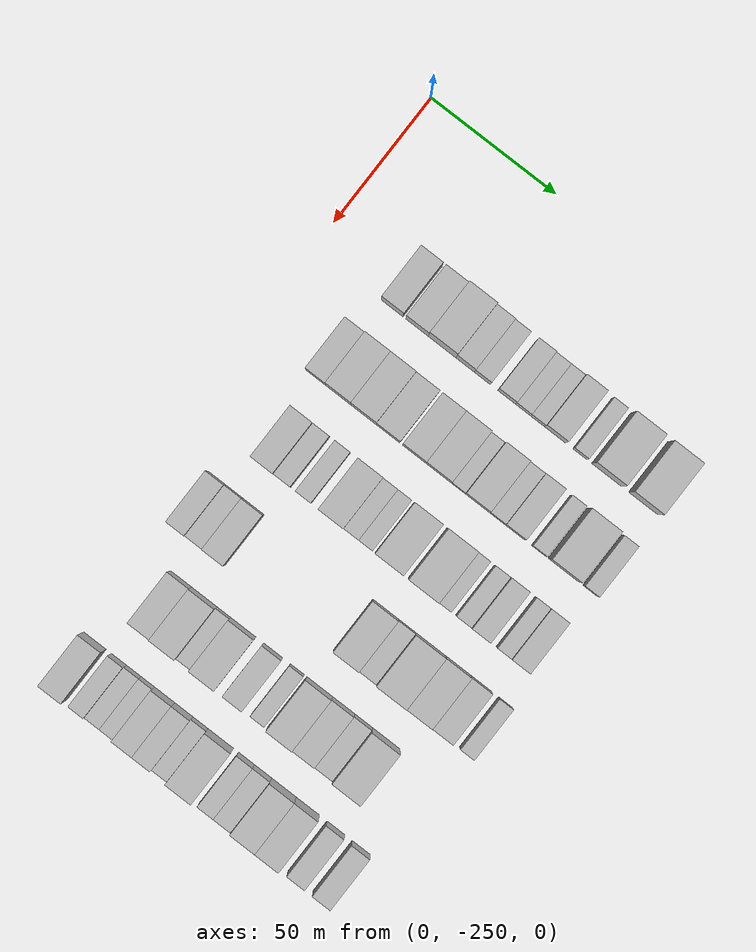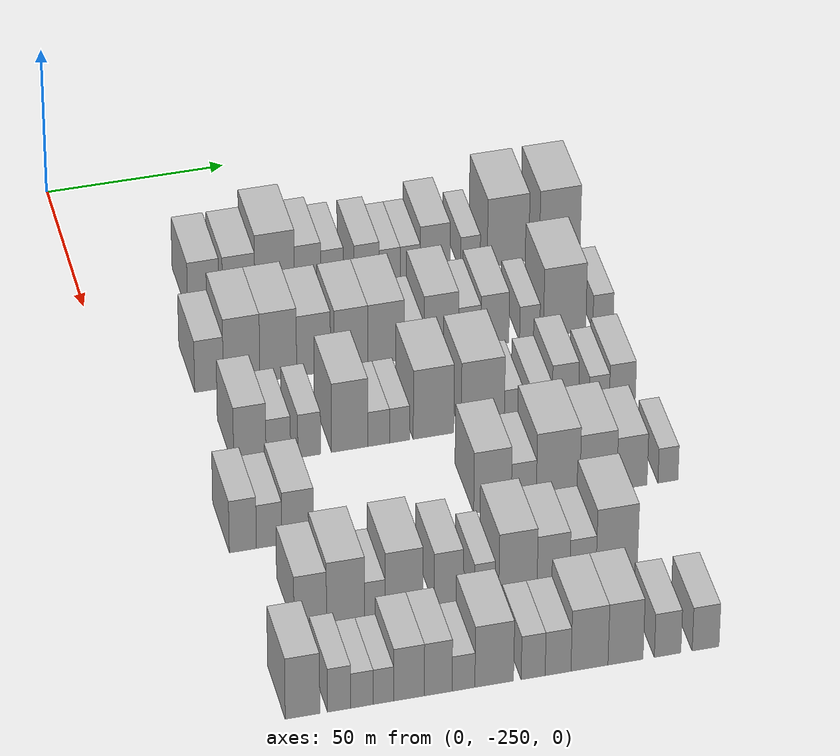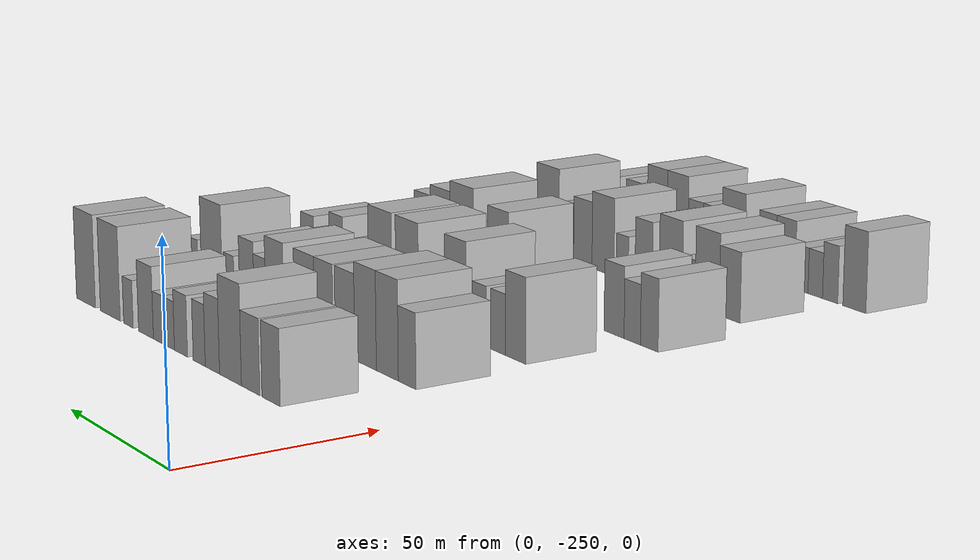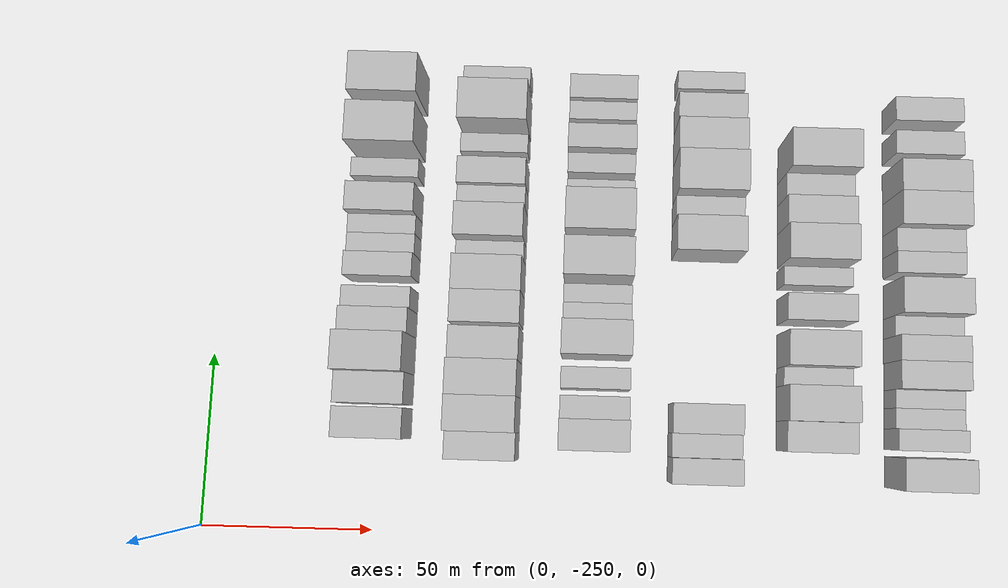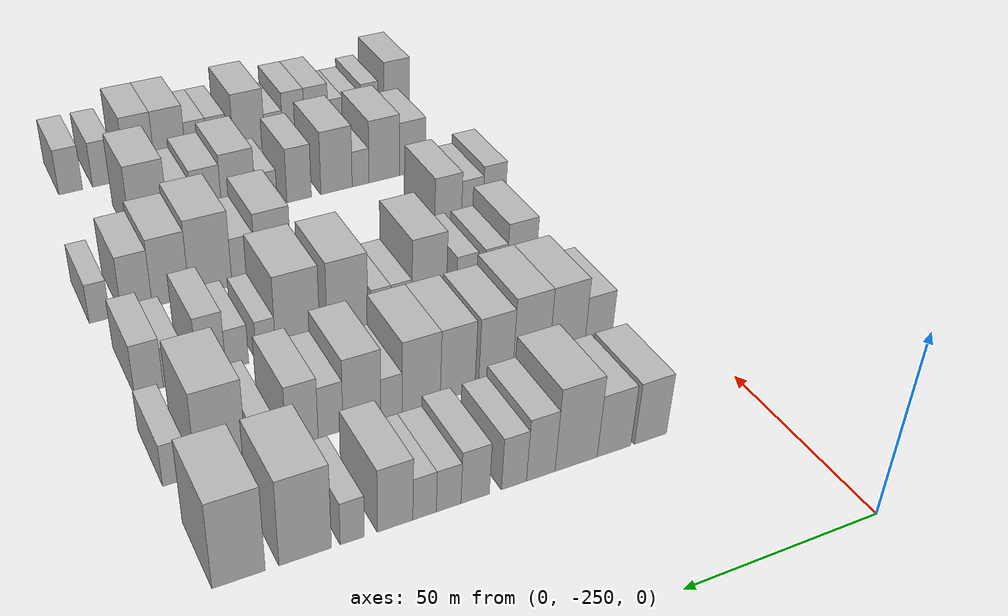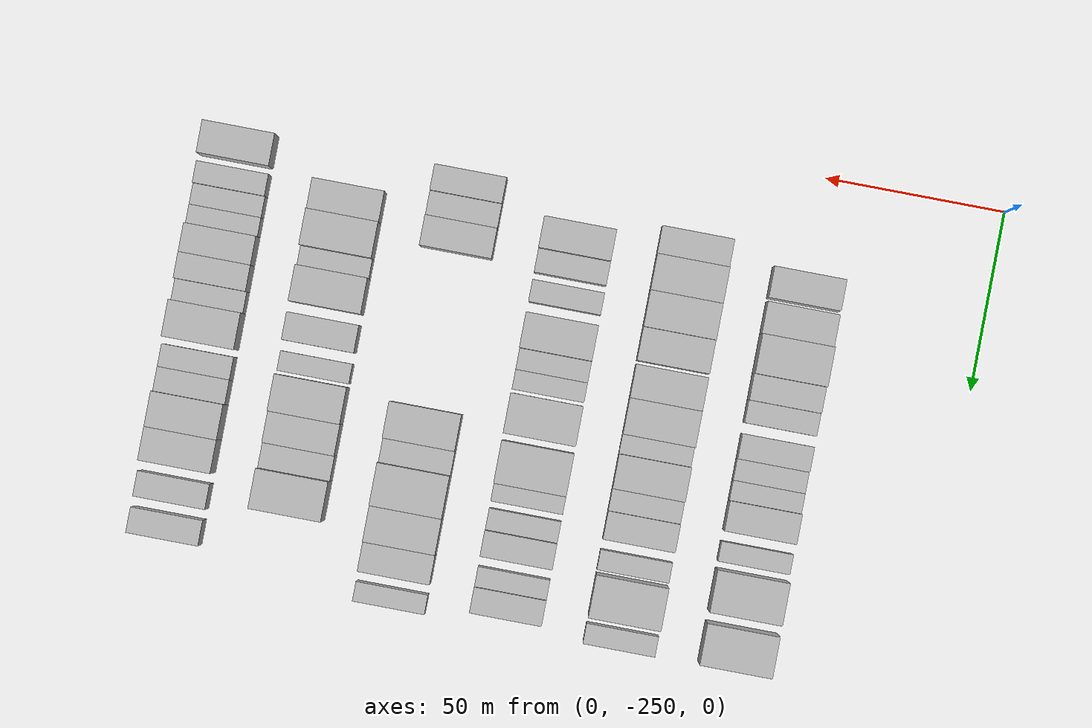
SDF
<sdf version="1.6">
 <world name="default">
  <model name="building_37">
   <static>1</static>
   <pose>50.0000 -218.8136 0 0.000000 0.000000 0.000000</pose>
   <link name="link">
    <pose>0 0 9.00 0 0 0</pose>
    <collision name="collision"><geometry><box><size>20.0000 8.7217 18.0000</size></box></geometry></collision>
    <visual name="visual">
     <cast_shadows>0</cast_shadows>
     <geometry><box><size>20.0000 8.7217 18.0000</size></box></geometry>
     <material>
      <script>
       <uri>model://HANNAS_wall/materials/scripts</uri>
       <uri>model://HANNAS_wall/materials/textures</uri>
       <name>vrc/HANNAS_wall</name>
      </script>
     </material>
    </visual>
   </link>
  </model>
  <model name="building_38">
   <static>1</static>
   <pose>50.0000 -208.9542 0 0.000000 0.000000 0.000000</pose>
   <link name="link">
    <pose>0 0 9.00 0 0 0</pose>
    <collision name="collision"><geometry><box><size>20.0000 8.9971 18.0000</size></box></geometry></collision>
    <visual name="visual">
     <cast_shadows>0</cast_shadows>
     <geometry><box><size>20.0000 8.9971 18.0000</size></box></geometry>
     <material>
      <script>
       <uri>model://HANNAS_wall/materials/scripts</uri>
       <uri>model://HANNAS_wall/materials/textures</uri>
       <name>vrc/HANNAS_wall</name>
      </script>
     </material>
    </visual>
   </link>
  </model>
  <model name="building_39">
   <static>1</static>
   <pose>50.0000 -198.9509 0 0.000000 0.000000 0.000000</pose>
   <link name="link">
    <pose>0 0 12.00 0 0 0</pose>
    <collision name="collision"><geometry><box><size>20.0000 11.0095 24.0000</size></box></geometry></collision>
    <visual name="visual">
     <cast_shadows>0</cast_shadows>
     <geometry><box><size>20.0000 11.0095 24.0000</size></box></geometry>
     <material>
      <script>
       <uri>model://HANNAS_wall/materials/scripts</uri>
       <uri>model://HANNAS_wall/materials/textures</uri>
       <name>vrc/HANNAS_wall</name>
      </script>
     </material>
    </visual>
   </link>
  </model>
  <model name="building_40">
   <static>1</static>
   <pose>50.0000 -189.7925 0 0.000000 0.000000 0.000000</pose>
   <link name="link">
    <pose>0 0 9.00 0 0 0</pose>
    <collision name="collision"><geometry><box><size>20.0000 7.3073 18.0000</size></box></geometry></collision>
    <visual name="visual">
     <cast_shadows>0</cast_shadows>
     <geometry><box><size>20.0000 7.3073 18.0000</size></box></geometry>
     <material>
      <script>
       <uri>model://HANNAS_wall/materials/scripts</uri>
       <uri>model://HANNAS_wall/materials/textures</uri>
       <name>vrc/HANNAS_wall</name>
      </script>
     </material>
    </visual>
   </link>
  </model>
  <model name="building_41">
   <static>1</static>
   <pose>50.0000 -182.9778 0 0.000000 0.000000 0.000000</pose>
   <link name="link">
    <pose>0 0 7.50 0 0 0</pose>
    <collision name="collision"><geometry><box><size>20.0000 6.3221 15.0000</size></box></geometry></collision>
    <visual name="visual">
     <cast_shadows>0</cast_shadows>
     <geometry><box><size>20.0000 6.3221 15.0000</size></box></geometry>
     <material>
      <script>
       <uri>model://HANNAS_wall/materials/scripts</uri>
       <uri>model://HANNAS_wall/materials/textures</uri>
       <name>vrc/HANNAS_wall</name>
      </script>
     </material>
    </visual>
   </link>
  </model>
  <model name="building_42">
   <static>1</static>
   <pose>50.0000 -173.3181 0 0.000000 0.000000 0.000000</pose>
   <link name="link">
    <pose>0 0 7.50 0 0 0</pose>
    <collision name="collision"><geometry><box><size>20.0000 6.9972 15.0000</size></box></geometry></collision>
    <visual name="visual">
     <cast_shadows>0</cast_shadows>
     <geometry><box><size>20.0000 6.9972 15.0000</size></box></geometry>
     <material>
      <script>
       <uri>model://HANNAS_wall/materials/scripts</uri>
       <uri>model://HANNAS_wall/materials/textures</uri>
       <name>vrc/HANNAS_wall</name>
      </script>
     </material>
    </visual>
   </link>
  </model>
  <model name="building_43">
   <static>1</static>
   <pose>50.0000 -166.8333 0 0.000000 0.000000 0.000000</pose>
   <link name="link">
    <pose>0 0 6.00 0 0 0</pose>
    <collision name="collision"><geometry><box><size>20.0000 5.9725 12.0000</size></box></geometry></collision>
    <visual name="visual">
     <cast_shadows>0</cast_shadows>
     <geometry><box><size>20.0000 5.9725 12.0000</size></box></geometry>
     <material>
      <script>
       <uri>model://HANNAS_wall/materials/scripts</uri>
       <uri>model://HANNAS_wall/materials/textures</uri>
       <name>vrc/HANNAS_wall</name>
      </script>
     </material>
    </visual>
   </link>
  </model>
  <model name="building_44">
   <static>1</static>
   <pose>50.0000 -161.0498 0 0.000000 0.000000 0.000000</pose>
   <link name="link">
    <pose>0 0 6.00 0 0 0</pose>
    <collision name="collision"><geometry><box><size>20.0000 5.5944 12.0000</size></box></geometry></collision>
    <visual name="visual">
     <cast_shadows>0</cast_shadows>
     <geometry><box><size>20.0000 5.5944 12.0000</size></box></geometry>
     <material>
      <script>
       <uri>model://HANNAS_wall/materials/scripts</uri>
       <uri>model://HANNAS_wall/materials/textures</uri>
       <name>vrc/HANNAS_wall</name>
      </script>
     </material>
    </visual>
   </link>
  </model>
  <model name="building_45">
   <static>1</static>
   <pose>50.0000 -154.0723 0 0.000000 0.000000 0.000000</pose>
   <link name="link">
    <pose>0 0 9.00 0 0 0</pose>
    <collision name="collision"><geometry><box><size>20.0000 8.3606 18.0000</size></box></geometry></collision>
    <visual name="visual">
     <cast_shadows>0</cast_shadows>
     <geometry><box><size>20.0000 8.3606 18.0000</size></box></geometry>
     <material>
      <script>
       <uri>model://HANNAS_wall/materials/scripts</uri>
       <uri>model://HANNAS_wall/materials/textures</uri>
       <name>vrc/HANNAS_wall</name>
      </script>
     </material>
    </visual>
   </link>
  </model>
  <model name="building_46">
   <static>1</static>
   <pose>50.0000 -144.1225 0 0.000000 0.000000 0.000000</pose>
   <link name="link">
    <pose>0 0 6.00 0 0 0</pose>
    <collision name="collision"><geometry><box><size>20.0000 5.5389 12.0000</size></box></geometry></collision>
    <visual name="visual">
     <cast_shadows>0</cast_shadows>
     <geometry><box><size>20.0000 5.5389 12.0000</size></box></geometry>
     <material>
      <script>
       <uri>model://HANNAS_wall/materials/scripts</uri>
       <uri>model://HANNAS_wall/materials/textures</uri>
       <name>vrc/HANNAS_wall</name>
      </script>
     </material>
    </visual>
   </link>
  </model>
  <model name="building_47">
   <static>1</static>
   <pose>50.0000 -133.4879 0 0.000000 0.000000 0.000000</pose>
   <link name="link">
    <pose>0 0 12.00 0 0 0</pose>
    <collision name="collision"><geometry><box><size>20.0000 11.7302 24.0000</size></box></geometry></collision>
    <visual name="visual">
     <cast_shadows>0</cast_shadows>
     <geometry><box><size>20.0000 11.7302 24.0000</size></box></geometry>
     <material>
      <script>
       <uri>model://HANNAS_wall/materials/scripts</uri>
       <uri>model://HANNAS_wall/materials/textures</uri>
       <name>vrc/HANNAS_wall</name>
      </script>
     </material>
    </visual>
   </link>
  </model>
  <model name="building_48">
   <static>1</static>
   <pose>50.0000 -118.8584 0 0.000000 0.000000 0.000000</pose>
   <link name="link">
    <pose>0 0 12.00 0 0 0</pose>
    <collision name="collision"><geometry><box><size>20.0000 11.5290 24.0000</size></box></geometry></collision>
    <visual name="visual">
     <cast_shadows>0</cast_shadows>
     <geometry><box><size>20.0000 11.5290 24.0000</size></box></geometry>
     <material>
      <script>
       <uri>model://HANNAS_wall/materials/scripts</uri>
       <uri>model://HANNAS_wall/materials/textures</uri>
       <name>vrc/HANNAS_wall</name>
      </script>
     </material>
    </visual>
   </link>
  </model>
  <model name="building_157">
   <static>1</static>
   <pose>82.0000 -224.3511 0 0.000000 0.000000 0.000000</pose>
   <link name="link">
    <pose>0 0 9.00 0 0 0</pose>
    <collision name="collision"><geometry><box><size>20.0000 7.8740 18.0000</size></box></geometry></collision>
    <visual name="visual">
     <cast_shadows>0</cast_shadows>
     <geometry><box><size>20.0000 7.8740 18.0000</size></box></geometry>
     <material>
      <script>
       <uri>model://HANNAS_wall/materials/scripts</uri>
       <uri>model://HANNAS_wall/materials/textures</uri>
       <name>vrc/HANNAS_wall</name>
      </script>
     </material>
    </visual>
   </link>
  </model>
  <model name="building_158">
   <static>1</static>
   <pose>82.0000 -215.4041 0 0.000000 0.000000 0.000000</pose>
   <link name="link">
    <pose>0 0 12.00 0 0 0</pose>
    <collision name="collision"><geometry><box><size>20.0000 10.0199 24.0000</size></box></geometry></collision>
    <visual name="visual">
     <cast_shadows>0</cast_shadows>
     <geometry><box><size>20.0000 10.0199 24.0000</size></box></geometry>
     <material>
      <script>
       <uri>model://HANNAS_wall/materials/scripts</uri>
       <uri>model://HANNAS_wall/materials/textures</uri>
       <name>vrc/HANNAS_wall</name>
      </script>
     </material>
    </visual>
   </link>
  </model>
  <model name="building_159">
   <static>1</static>
   <pose>82.0000 -205.3446 0 0.000000 0.000000 0.000000</pose>
   <link name="link">
    <pose>0 0 12.00 0 0 0</pose>
    <collision name="collision"><geometry><box><size>20.0000 10.0991 24.0000</size></box></geometry></collision>
    <visual name="visual">
     <cast_shadows>0</cast_shadows>
     <geometry><box><size>20.0000 10.0991 24.0000</size></box></geometry>
     <material>
      <script>
       <uri>model://HANNAS_wall/materials/scripts</uri>
       <uri>model://HANNAS_wall/materials/textures</uri>
       <name>vrc/HANNAS_wall</name>
      </script>
     </material>
    </visual>
   </link>
  </model>
  <model name="building_160">
   <static>1</static>
   <pose>82.0000 -195.6320 0 0.000000 0.000000 0.000000</pose>
   <link name="link">
    <pose>0 0 10.50 0 0 0</pose>
    <collision name="collision"><geometry><box><size>20.0000 9.3261 21.0000</size></box></geometry></collision>
    <visual name="visual">
     <cast_shadows>0</cast_shadows>
     <geometry><box><size>20.0000 9.3261 21.0000</size></box></geometry>
     <material>
      <script>
       <uri>model://HANNAS_wall/materials/scripts</uri>
       <uri>model://HANNAS_wall/materials/textures</uri>
       <name>vrc/HANNAS_wall</name>
      </script>
     </material>
    </visual>
   </link>
  </model>
  <model name="building_161">
   <static>1</static>
   <pose>82.0000 -185.3292 0 0.000000 0.000000 0.000000</pose>
   <link name="link">
    <pose>0 0 10.50 0 0 0</pose>
    <collision name="collision"><geometry><box><size>20.0000 9.2794 21.0000</size></box></geometry></collision>
    <visual name="visual">
     <cast_shadows>0</cast_shadows>
     <geometry><box><size>20.0000 9.2794 21.0000</size></box></geometry>
     <material>
      <script>
       <uri>model://HANNAS_wall/materials/scripts</uri>
       <uri>model://HANNAS_wall/materials/textures</uri>
       <name>vrc/HANNAS_wall</name>
      </script>
     </material>
    </visual>
   </link>
  </model>
  <model name="building_162">
   <static>1</static>
   <pose>82.0000 -175.6567 0 0.000000 0.000000 0.000000</pose>
   <link name="link">
    <pose>0 0 10.50 0 0 0</pose>
    <collision name="collision"><geometry><box><size>20.0000 10.0657 21.0000</size></box></geometry></collision>
    <visual name="visual">
     <cast_shadows>0</cast_shadows>
     <geometry><box><size>20.0000 10.0657 21.0000</size></box></geometry>
     <material>
      <script>
       <uri>model://HANNAS_wall/materials/scripts</uri>
       <uri>model://HANNAS_wall/materials/textures</uri>
       <name>vrc/HANNAS_wall</name>
      </script>
     </material>
    </visual>
   </link>
  </model>
  <model name="building_163">
   <static>1</static>
   <pose>82.0000 -167.8870 0 0.000000 0.000000 0.000000</pose>
   <link name="link">
    <pose>0 0 6.00 0 0 0</pose>
    <collision name="collision"><geometry><box><size>20.0000 5.4738 12.0000</size></box></geometry></collision>
    <visual name="visual">
     <cast_shadows>0</cast_shadows>
     <geometry><box><size>20.0000 5.4738 12.0000</size></box></geometry>
     <material>
      <script>
       <uri>model://HANNAS_wall/materials/scripts</uri>
       <uri>model://HANNAS_wall/materials/textures</uri>
       <name>vrc/HANNAS_wall</name>
      </script>
     </material>
    </visual>
   </link>
  </model>
  <model name="building_164">
   <static>1</static>
   <pose>82.0000 -160.3617 0 0.000000 0.000000 0.000000</pose>
   <link name="link">
    <pose>0 0 10.50 0 0 0</pose>
    <collision name="collision"><geometry><box><size>20.0000 9.5767 21.0000</size></box></geometry></collision>
    <visual name="visual">
     <cast_shadows>0</cast_shadows>
     <geometry><box><size>20.0000 9.5767 21.0000</size></box></geometry>
     <material>
      <script>
       <uri>model://HANNAS_wall/materials/scripts</uri>
       <uri>model://HANNAS_wall/materials/textures</uri>
       <name>vrc/HANNAS_wall</name>
      </script>
     </material>
    </visual>
   </link>
  </model>
  <model name="building_165">
   <static>1</static>
   <pose>82.0000 -152.4715 0 0.000000 0.000000 0.000000</pose>
   <link name="link">
    <pose>0 0 7.50 0 0 0</pose>
    <collision name="collision"><geometry><box><size>20.0000 6.2038 15.0000</size></box></geometry></collision>
    <visual name="visual">
     <cast_shadows>0</cast_shadows>
     <geometry><box><size>20.0000 6.2038 15.0000</size></box></geometry>
     <material>
      <script>
       <uri>model://HANNAS_wall/materials/scripts</uri>
       <uri>model://HANNAS_wall/materials/textures</uri>
       <name>vrc/HANNAS_wall</name>
      </script>
     </material>
    </visual>
   </link>
  </model>
  <model name="building_166">
   <static>1</static>
   <pose>82.0000 -145.4424 0 0.000000 0.000000 0.000000</pose>
   <link name="link">
    <pose>0 0 9.00 0 0 0</pose>
    <collision name="collision"><geometry><box><size>20.0000 7.8543 18.0000</size></box></geometry></collision>
    <visual name="visual">
     <cast_shadows>0</cast_shadows>
     <geometry><box><size>20.0000 7.8543 18.0000</size></box></geometry>
     <material>
      <script>
       <uri>model://HANNAS_wall/materials/scripts</uri>
       <uri>model://HANNAS_wall/materials/textures</uri>
       <name>vrc/HANNAS_wall</name>
      </script>
     </material>
    </visual>
   </link>
  </model>
  <model name="building_167">
   <static>1</static>
   <pose>82.0000 -135.7061 0 0.000000 0.000000 0.000000</pose>
   <link name="link">
    <pose>0 0 6.00 0 0 0</pose>
    <collision name="collision"><geometry><box><size>20.0000 5.6183 12.0000</size></box></geometry></collision>
    <visual name="visual">
     <cast_shadows>0</cast_shadows>
     <geometry><box><size>20.0000 5.6183 12.0000</size></box></geometry>
     <material>
      <script>
       <uri>model://HANNAS_wall/materials/scripts</uri>
       <uri>model://HANNAS_wall/materials/textures</uri>
       <name>vrc/HANNAS_wall</name>
      </script>
     </material>
    </visual>
   </link>
  </model>
  <model name="building_168">
   <static>1</static>
   <pose>82.0000 -125.9696 0 0.000000 0.000000 0.000000</pose>
   <link name="link">
    <pose>0 0 12.00 0 0 0</pose>
    <collision name="collision"><geometry><box><size>20.0000 11.8546 24.0000</size></box></geometry></collision>
    <visual name="visual">
     <cast_shadows>0</cast_shadows>
     <geometry><box><size>20.0000 11.8546 24.0000</size></box></geometry>
     <material>
      <script>
       <uri>model://HANNAS_wall/materials/scripts</uri>
       <uri>model://HANNAS_wall/materials/textures</uri>
       <name>vrc/HANNAS_wall</name>
      </script>
     </material>
    </visual>
   </link>
  </model>
  <model name="building_169">
   <static>1</static>
   <pose>82.0000 -115.1992 0 0.000000 0.000000 0.000000</pose>
   <link name="link">
    <pose>0 0 6.00 0 0 0</pose>
    <collision name="collision"><geometry><box><size>20.0000 5.6862 12.0000</size></box></geometry></collision>
    <visual name="visual">
     <cast_shadows>0</cast_shadows>
     <geometry><box><size>20.0000 5.6862 12.0000</size></box></geometry>
     <material>
      <script>
       <uri>model://HANNAS_wall/materials/scripts</uri>
       <uri>model://HANNAS_wall/materials/textures</uri>
       <name>vrc/HANNAS_wall</name>
      </script>
     </material>
    </visual>
   </link>
  </model>
  <model name="building_281">
   <static>1</static>
   <pose>114.0000 -220.4033 0 0.000000 0.000000 0.000000</pose>
   <link name="link">
    <pose>0 0 10.50 0 0 0</pose>
    <collision name="collision"><geometry><box><size>20.0000 8.7437 21.0000</size></box></geometry></collision>
    <visual name="visual">
     <cast_shadows>0</cast_shadows>
     <geometry><box><size>20.0000 8.7437 21.0000</size></box></geometry>
     <material>
      <script>
       <uri>model://HANNAS_wall/materials/scripts</uri>
       <uri>model://HANNAS_wall/materials/textures</uri>
       <name>vrc/HANNAS_wall</name>
      </script>
     </material>
    </visual>
   </link>
  </model>
  <model name="building_282">
   <static>1</static>
   <pose>114.0000 -212.7180 0 0.000000 0.000000 0.000000</pose>
   <link name="link">
    <pose>0 0 7.50 0 0 0</pose>
    <collision name="collision"><geometry><box><size>20.0000 6.6269 15.0000</size></box></geometry></collision>
    <visual name="visual">
     <cast_shadows>0</cast_shadows>
     <geometry><box><size>20.0000 6.6269 15.0000</size></box></geometry>
     <material>
      <script>
       <uri>model://HANNAS_wall/materials/scripts</uri>
       <uri>model://HANNAS_wall/materials/textures</uri>
       <name>vrc/HANNAS_wall</name>
      </script>
     </material>
    </visual>
   </link>
  </model>
  <model name="building_283">
   <static>1</static>
   <pose>114.0000 -204.3263 0 0.000000 0.000000 0.000000</pose>
   <link name="link">
    <pose>0 0 7.50 0 0 0</pose>
    <collision name="collision"><geometry><box><size>20.0000 6.1565 15.0000</size></box></geometry></collision>
    <visual name="visual">
     <cast_shadows>0</cast_shadows>
     <geometry><box><size>20.0000 6.1565 15.0000</size></box></geometry>
     <material>
      <script>
       <uri>model://HANNAS_wall/materials/scripts</uri>
       <uri>model://HANNAS_wall/materials/textures</uri>
       <name>vrc/HANNAS_wall</name>
      </script>
     </material>
    </visual>
   </link>
  </model>
  <model name="building_284">
   <static>1</static>
   <pose>114.0000 -193.3181 0 0.000000 0.000000 0.000000</pose>
   <link name="link">
    <pose>0 0 12.00 0 0 0</pose>
    <collision name="collision"><geometry><box><size>20.0000 9.8600 24.0000</size></box></geometry></collision>
    <visual name="visual">
     <cast_shadows>0</cast_shadows>
     <geometry><box><size>20.0000 9.8600 24.0000</size></box></geometry>
     <material>
      <script>
       <uri>model://HANNAS_wall/materials/scripts</uri>
       <uri>model://HANNAS_wall/materials/textures</uri>
       <name>vrc/HANNAS_wall</name>
      </script>
     </material>
    </visual>
   </link>
  </model>
  <model name="building_285">
   <static>1</static>
   <pose>114.0000 -185.4224 0 0.000000 0.000000 0.000000</pose>
   <link name="link">
    <pose>0 0 6.00 0 0 0</pose>
    <collision name="collision"><geometry><box><size>20.0000 5.9312 12.0000</size></box></geometry></collision>
    <visual name="visual">
     <cast_shadows>0</cast_shadows>
     <geometry><box><size>20.0000 5.9312 12.0000</size></box></geometry>
     <material>
      <script>
       <uri>model://HANNAS_wall/materials/scripts</uri>
       <uri>model://HANNAS_wall/materials/textures</uri>
       <name>vrc/HANNAS_wall</name>
      </script>
     </material>
    </visual>
   </link>
  </model>
  <model name="building_286">
   <static>1</static>
   <pose>114.0000 -179.7169 0 0.000000 0.000000 0.000000</pose>
   <link name="link">
    <pose>0 0 6.00 0 0 0</pose>
    <collision name="collision"><geometry><box><size>20.0000 5.4798 12.0000</size></box></geometry></collision>
    <visual name="visual">
     <cast_shadows>0</cast_shadows>
     <geometry><box><size>20.0000 5.4798 12.0000</size></box></geometry>
     <material>
      <script>
       <uri>model://HANNAS_wall/materials/scripts</uri>
       <uri>model://HANNAS_wall/materials/textures</uri>
       <name>vrc/HANNAS_wall</name>
      </script>
     </material>
    </visual>
   </link>
  </model>
  <model name="building_287">
   <static>1</static>
   <pose>114.0000 -170.4242 0 0.000000 0.000000 0.000000</pose>
   <link name="link">
    <pose>0 0 12.00 0 0 0</pose>
    <collision name="collision"><geometry><box><size>20.0000 11.1057 24.0000</size></box></geometry></collision>
    <visual name="visual">
     <cast_shadows>0</cast_shadows>
     <geometry><box><size>20.0000 11.1057 24.0000</size></box></geometry>
     <material>
      <script>
       <uri>model://HANNAS_wall/materials/scripts</uri>
       <uri>model://HANNAS_wall/materials/textures</uri>
       <name>vrc/HANNAS_wall</name>
      </script>
     </material>
    </visual>
   </link>
  </model>
  <model name="building_288">
   <static>1</static>
   <pose>114.0000 -156.9574 0 0.000000 0.000000 0.000000</pose>
   <link name="link">
    <pose>0 0 12.00 0 0 0</pose>
    <collision name="collision"><geometry><box><size>20.0000 11.8280 24.0000</size></box></geometry></collision>
    <visual name="visual">
     <cast_shadows>0</cast_shadows>
     <geometry><box><size>20.0000 11.8280 24.0000</size></box></geometry>
     <material>
      <script>
       <uri>model://HANNAS_wall/materials/scripts</uri>
       <uri>model://HANNAS_wall/materials/textures</uri>
       <name>vrc/HANNAS_wall</name>
      </script>
     </material>
    </visual>
   </link>
  </model>
  <model name="building_289">
   <static>1</static>
   <pose>114.0000 -148.4713 0 0.000000 0.000000 0.000000</pose>
   <link name="link">
    <pose>0 0 6.00 0 0 0</pose>
    <collision name="collision"><geometry><box><size>20.0000 5.1443 12.0000</size></box></geometry></collision>
    <visual name="visual">
     <cast_shadows>0</cast_shadows>
     <geometry><box><size>20.0000 5.1443 12.0000</size></box></geometry>
     <material>
      <script>
       <uri>model://HANNAS_wall/materials/scripts</uri>
       <uri>model://HANNAS_wall/materials/textures</uri>
       <name>vrc/HANNAS_wall</name>
      </script>
     </material>
    </visual>
   </link>
  </model>
  <model name="building_290">
   <static>1</static>
   <pose>114.0000 -140.9201 0 0.000000 0.000000 0.000000</pose>
   <link name="link">
    <pose>0 0 6.00 0 0 0</pose>
    <collision name="collision"><geometry><box><size>20.0000 5.9581 12.0000</size></box></geometry></collision>
    <visual name="visual">
     <cast_shadows>0</cast_shadows>
     <geometry><box><size>20.0000 5.9581 12.0000</size></box></geometry>
     <material>
      <script>
       <uri>model://HANNAS_wall/materials/scripts</uri>
       <uri>model://HANNAS_wall/materials/textures</uri>
       <name>vrc/HANNAS_wall</name>
      </script>
     </material>
    </visual>
   </link>
  </model>
  <model name="building_291">
   <static>1</static>
   <pose>114.0000 -134.3191 0 0.000000 0.000000 0.000000</pose>
   <link name="link">
    <pose>0 0 9.00 0 0 0</pose>
    <collision name="collision"><geometry><box><size>20.0000 7.2440 18.0000</size></box></geometry></collision>
    <visual name="visual">
     <cast_shadows>0</cast_shadows>
     <geometry><box><size>20.0000 7.2440 18.0000</size></box></geometry>
     <material>
      <script>
       <uri>model://HANNAS_wall/materials/scripts</uri>
       <uri>model://HANNAS_wall/materials/textures</uri>
       <name>vrc/HANNAS_wall</name>
      </script>
     </material>
    </visual>
   </link>
  </model>
  <model name="building_292">
   <static>1</static>
   <pose>114.0000 -124.9095 0 0.000000 0.000000 0.000000</pose>
   <link name="link">
    <pose>0 0 6.00 0 0 0</pose>
    <collision name="collision"><geometry><box><size>20.0000 5.5752 12.0000</size></box></geometry></collision>
    <visual name="visual">
     <cast_shadows>0</cast_shadows>
     <geometry><box><size>20.0000 5.5752 12.0000</size></box></geometry>
     <material>
      <script>
       <uri>model://HANNAS_wall/materials/scripts</uri>
       <uri>model://HANNAS_wall/materials/textures</uri>
       <name>vrc/HANNAS_wall</name>
      </script>
     </material>
    </visual>
   </link>
  </model>
  <model name="building_293">
   <static>1</static>
   <pose>114.0000 -118.5237 0 0.000000 0.000000 0.000000</pose>
   <link name="link">
    <pose>0 0 7.50 0 0 0</pose>
    <collision name="collision"><geometry><box><size>20.0000 7.1963 15.0000</size></box></geometry></collision>
    <visual name="visual">
     <cast_shadows>0</cast_shadows>
     <geometry><box><size>20.0000 7.1963 15.0000</size></box></geometry>
     <material>
      <script>
       <uri>model://HANNAS_wall/materials/scripts</uri>
       <uri>model://HANNAS_wall/materials/textures</uri>
       <name>vrc/HANNAS_wall</name>
      </script>
     </material>
    </visual>
   </link>
  </model>
  <model name="building_401">
   <static>1</static>
   <pose>146.0000 -229.5546 0 0.000000 0.000000 0.000000</pose>
   <link name="link">
    <pose>0 0 9.00 0 0 0</pose>
    <collision name="collision"><geometry><box><size>20.0000 7.2374 18.0000</size></box></geometry></collision>
    <visual name="visual">
     <cast_shadows>0</cast_shadows>
     <geometry><box><size>20.0000 7.2374 18.0000</size></box></geometry>
     <material>
      <script>
       <uri>model://HANNAS_wall/materials/scripts</uri>
       <uri>model://HANNAS_wall/materials/textures</uri>
       <name>vrc/HANNAS_wall</name>
      </script>
     </material>
    </visual>
   </link>
  </model>
  <model name="building_402">
   <static>1</static>
   <pose>146.0000 -222.5397 0 0.000000 0.000000 0.000000</pose>
   <link name="link">
    <pose>0 0 7.50 0 0 0</pose>
    <collision name="collision"><geometry><box><size>20.0000 6.7925 15.0000</size></box></geometry></collision>
    <visual name="visual">
     <cast_shadows>0</cast_shadows>
     <geometry><box><size>20.0000 6.7925 15.0000</size></box></geometry>
     <material>
      <script>
       <uri>model://HANNAS_wall/materials/scripts</uri>
       <uri>model://HANNAS_wall/materials/textures</uri>
       <name>vrc/HANNAS_wall</name>
      </script>
     </material>
    </visual>
   </link>
  </model>
  <model name="building_403">
   <static>1</static>
   <pose>146.0000 -214.9189 0 0.000000 0.000000 0.000000</pose>
   <link name="link">
    <pose>0 0 9.00 0 0 0</pose>
    <collision name="collision"><geometry><box><size>20.0000 8.4490 18.0000</size></box></geometry></collision>
    <visual name="visual">
     <cast_shadows>0</cast_shadows>
     <geometry><box><size>20.0000 8.4490 18.0000</size></box></geometry>
     <material>
      <script>
       <uri>model://HANNAS_wall/materials/scripts</uri>
       <uri>model://HANNAS_wall/materials/textures</uri>
       <name>vrc/HANNAS_wall</name>
      </script>
     </material>
    </visual>
   </link>
  </model>
  <model name="building_404">
   <static>1</static>
   <pose>146.0000 -162.4751 0 0.000000 0.000000 0.000000</pose>
   <link name="link">
    <pose>0 0 10.50 0 0 0</pose>
    <collision name="collision"><geometry><box><size>20.0000 10.1461 21.0000</size></box></geometry></collision>
    <visual name="visual">
     <cast_shadows>0</cast_shadows>
     <geometry><box><size>20.0000 10.1461 21.0000</size></box></geometry>
     <material>
      <script>
       <uri>model://HANNAS_wall/materials/scripts</uri>
       <uri>model://HANNAS_wall/materials/textures</uri>
       <name>vrc/HANNAS_wall</name>
      </script>
     </material>
    </visual>
   </link>
  </model>
  <model name="building_405">
   <static>1</static>
   <pose>146.0000 -154.0193 0 0.000000 0.000000 0.000000</pose>
   <link name="link">
    <pose>0 0 7.50 0 0 0</pose>
    <collision name="collision"><geometry><box><size>20.0000 6.7656 15.0000</size></box></geometry></collision>
    <visual name="visual">
     <cast_shadows>0</cast_shadows>
     <geometry><box><size>20.0000 6.7656 15.0000</size></box></geometry>
     <material>
      <script>
       <uri>model://HANNAS_wall/materials/scripts</uri>
       <uri>model://HANNAS_wall/materials/textures</uri>
       <name>vrc/HANNAS_wall</name>
      </script>
     </material>
    </visual>
   </link>
  </model>
  <model name="building_406">
   <static>1</static>
   <pose>146.0000 -144.7193 0 0.000000 0.000000 0.000000</pose>
   <link name="link">
    <pose>0 0 12.00 0 0 0</pose>
    <collision name="collision"><geometry><box><size>20.0000 11.8344 24.0000</size></box></geometry></collision>
    <visual name="visual">
     <cast_shadows>0</cast_shadows>
     <geometry><box><size>20.0000 11.8344 24.0000</size></box></geometry>
     <material>
      <script>
       <uri>model://HANNAS_wall/materials/scripts</uri>
       <uri>model://HANNAS_wall/materials/textures</uri>
       <name>vrc/HANNAS_wall</name>
      </script>
     </material>
    </visual>
   </link>
  </model>
  <model name="building_407">
   <static>1</static>
   <pose>146.0000 -133.7647 0 0.000000 0.000000 0.000000</pose>
   <link name="link">
    <pose>0 0 10.50 0 0 0</pose>
    <collision name="collision"><geometry><box><size>20.0000 10.0747 21.0000</size></box></geometry></collision>
    <visual name="visual">
     <cast_shadows>0</cast_shadows>
     <geometry><box><size>20.0000 10.0747 21.0000</size></box></geometry>
     <material>
      <script>
       <uri>model://HANNAS_wall/materials/scripts</uri>
       <uri>model://HANNAS_wall/materials/textures</uri>
       <name>vrc/HANNAS_wall</name>
      </script>
     </material>
    </visual>
   </link>
  </model>
  <model name="building_408">
   <static>1</static>
   <pose>146.0000 -124.5983 0 0.000000 0.000000 0.000000</pose>
   <link name="link">
    <pose>0 0 9.00 0 0 0</pose>
    <collision name="collision"><geometry><box><size>20.0000 8.2581 18.0000</size></box></geometry></collision>
    <visual name="visual">
     <cast_shadows>0</cast_shadows>
     <geometry><box><size>20.0000 8.2581 18.0000</size></box></geometry>
     <material>
      <script>
       <uri>model://HANNAS_wall/materials/scripts</uri>
       <uri>model://HANNAS_wall/materials/textures</uri>
       <name>vrc/HANNAS_wall</name>
      </script>
     </material>
    </visual>
   </link>
  </model>
  <model name="building_409">
   <static>1</static>
   <pose>146.0000 -114.7355 0 0.000000 0.000000 0.000000</pose>
   <link name="link">
    <pose>0 0 6.00 0 0 0</pose>
    <collision name="collision"><geometry><box><size>20.0000 5.4674 12.0000</size></box></geometry></collision>
    <visual name="visual">
     <cast_shadows>0</cast_shadows>
     <geometry><box><size>20.0000 5.4674 12.0000</size></box></geometry>
     <material>
      <script>
       <uri>model://HANNAS_wall/materials/scripts</uri>
       <uri>model://HANNAS_wall/materials/textures</uri>
       <name>vrc/HANNAS_wall</name>
      </script>
     </material>
    </visual>
   </link>
  </model>
  <model name="building_519">
   <static>1</static>
   <pose>178.0000 -219.0295 0 0.000000 0.000000 0.000000</pose>
   <link name="link">
    <pose>0 0 9.00 0 0 0</pose>
    <collision name="collision"><geometry><box><size>20.0000 8.5733 18.0000</size></box></geometry></collision>
    <visual name="visual">
     <cast_shadows>0</cast_shadows>
     <geometry><box><size>20.0000 8.5733 18.0000</size></box></geometry>
     <material>
      <script>
       <uri>model://HANNAS_wall/materials/scripts</uri>
       <uri>model://HANNAS_wall/materials/textures</uri>
       <name>vrc/HANNAS_wall</name>
      </script>
     </material>
    </visual>
   </link>
  </model>
  <model name="building_520">
   <static>1</static>
   <pose>178.0000 -209.7074 0 0.000000 0.000000 0.000000</pose>
   <link name="link">
    <pose>0 0 10.50 0 0 0</pose>
    <collision name="collision"><geometry><box><size>20.0000 10.0709 21.0000</size></box></geometry></collision>
    <visual name="visual">
     <cast_shadows>0</cast_shadows>
     <geometry><box><size>20.0000 10.0709 21.0000</size></box></geometry>
     <material>
      <script>
       <uri>model://HANNAS_wall/materials/scripts</uri>
       <uri>model://HANNAS_wall/materials/textures</uri>
       <name>vrc/HANNAS_wall</name>
      </script>
     </material>
    </visual>
   </link>
  </model>
  <model name="building_521">
   <static>1</static>
   <pose>178.0000 -201.9458 0 0.000000 0.000000 0.000000</pose>
   <link name="link">
    <pose>0 0 6.00 0 0 0</pose>
    <collision name="collision"><geometry><box><size>20.0000 5.4523 12.0000</size></box></geometry></collision>
    <visual name="visual">
     <cast_shadows>0</cast_shadows>
     <geometry><box><size>20.0000 5.4523 12.0000</size></box></geometry>
     <material>
      <script>
       <uri>model://HANNAS_wall/materials/scripts</uri>
       <uri>model://HANNAS_wall/materials/textures</uri>
       <name>vrc/HANNAS_wall</name>
      </script>
     </material>
    </visual>
   </link>
  </model>
  <model name="building_522">
   <static>1</static>
   <pose>178.0000 -194.2092 0 0.000000 0.000000 0.000000</pose>
   <link name="link">
    <pose>0 0 10.50 0 0 0</pose>
    <collision name="collision"><geometry><box><size>20.0000 10.0209 21.0000</size></box></geometry></collision>
    <visual name="visual">
     <cast_shadows>0</cast_shadows>
     <geometry><box><size>20.0000 10.0209 21.0000</size></box></geometry>
     <material>
      <script>
       <uri>model://HANNAS_wall/materials/scripts</uri>
       <uri>model://HANNAS_wall/materials/textures</uri>
       <name>vrc/HANNAS_wall</name>
      </script>
     </material>
    </visual>
   </link>
  </model>
  <model name="building_523">
   <static>1</static>
   <pose>178.0000 -182.3529 0 0.000000 0.000000 0.000000</pose>
   <link name="link">
    <pose>0 0 9.00 0 0 0</pose>
    <collision name="collision"><geometry><box><size>20.0000 7.6916 18.0000</size></box></geometry></collision>
    <visual name="visual">
     <cast_shadows>0</cast_shadows>
     <geometry><box><size>20.0000 7.6916 18.0000</size></box></geometry>
     <material>
      <script>
       <uri>model://HANNAS_wall/materials/scripts</uri>
       <uri>model://HANNAS_wall/materials/textures</uri>
       <name>vrc/HANNAS_wall</name>
      </script>
     </material>
    </visual>
   </link>
  </model>
  <model name="building_524">
   <static>1</static>
   <pose>178.0000 -172.7483 0 0.000000 0.000000 0.000000</pose>
   <link name="link">
    <pose>0 0 6.00 0 0 0</pose>
    <collision name="collision"><geometry><box><size>20.0000 5.5178 12.0000</size></box></geometry></collision>
    <visual name="visual">
     <cast_shadows>0</cast_shadows>
     <geometry><box><size>20.0000 5.5178 12.0000</size></box></geometry>
     <material>
      <script>
       <uri>model://HANNAS_wall/materials/scripts</uri>
       <uri>model://HANNAS_wall/materials/textures</uri>
       <name>vrc/HANNAS_wall</name>
      </script>
     </material>
    </visual>
   </link>
  </model>
  <model name="building_525">
   <static>1</static>
   <pose>178.0000 -163.8823 0 0.000000 0.000000 0.000000</pose>
   <link name="link">
    <pose>0 0 10.50 0 0 0</pose>
    <collision name="collision"><geometry><box><size>20.0000 10.2141 21.0000</size></box></geometry></collision>
    <visual name="visual">
     <cast_shadows>0</cast_shadows>
     <geometry><box><size>20.0000 10.2141 21.0000</size></box></geometry>
     <material>
      <script>
       <uri>model://HANNAS_wall/materials/scripts</uri>
       <uri>model://HANNAS_wall/materials/textures</uri>
       <name>vrc/HANNAS_wall</name>
      </script>
     </material>
    </visual>
   </link>
  </model>
  <model name="building_526">
   <static>1</static>
   <pose>178.0000 -154.3994 0 0.000000 0.000000 0.000000</pose>
   <link name="link">
    <pose>0 0 9.00 0 0 0</pose>
    <collision name="collision"><geometry><box><size>20.0000 8.7518 18.0000</size></box></geometry></collision>
    <visual name="visual">
     <cast_shadows>0</cast_shadows>
     <geometry><box><size>20.0000 8.7518 18.0000</size></box></geometry>
     <material>
      <script>
       <uri>model://HANNAS_wall/materials/scripts</uri>
       <uri>model://HANNAS_wall/materials/textures</uri>
       <name>vrc/HANNAS_wall</name>
      </script>
     </material>
    </visual>
   </link>
  </model>
  <model name="building_527">
   <static>1</static>
   <pose>178.0000 -146.5101 0 0.000000 0.000000 0.000000</pose>
   <link name="link">
    <pose>0 0 7.50 0 0 0</pose>
    <collision name="collision"><geometry><box><size>20.0000 7.0267 15.0000</size></box></geometry></collision>
    <visual name="visual">
     <cast_shadows>0</cast_shadows>
     <geometry><box><size>20.0000 7.0267 15.0000</size></box></geometry>
     <material>
      <script>
       <uri>model://HANNAS_wall/materials/scripts</uri>
       <uri>model://HANNAS_wall/materials/textures</uri>
       <name>vrc/HANNAS_wall</name>
      </script>
     </material>
    </visual>
   </link>
  </model>
  <model name="building_528">
   <static>1</static>
   <pose>178.0000 -137.4530 0 0.000000 0.000000 0.000000</pose>
   <link name="link">
    <pose>0 0 12.00 0 0 0</pose>
    <collision name="collision"><geometry><box><size>20.0000 11.0876 24.0000</size></box></geometry></collision>
    <visual name="visual">
     <cast_shadows>0</cast_shadows>
     <geometry><box><size>20.0000 11.0876 24.0000</size></box></geometry>
     <material>
      <script>
       <uri>model://HANNAS_wall/materials/scripts</uri>
       <uri>model://HANNAS_wall/materials/textures</uri>
       <name>vrc/HANNAS_wall</name>
      </script>
     </material>
    </visual>
   </link>
  </model>
  <model name="building_632">
   <static>1</static>
   <pose>210.0000 -228.5400 0 0.000000 0.000000 0.000000</pose>
   <link name="link">
    <pose>0 0 10.50 0 0 0</pose>
    <collision name="collision"><geometry><box><size>20.0000 8.9979 21.0000</size></box></geometry></collision>
    <visual name="visual">
     <cast_shadows>0</cast_shadows>
     <geometry><box><size>20.0000 8.9979 21.0000</size></box></geometry>
     <material>
      <script>
       <uri>model://HANNAS_wall/materials/scripts</uri>
       <uri>model://HANNAS_wall/materials/textures</uri>
       <name>vrc/HANNAS_wall</name>
      </script>
     </material>
    </visual>
   </link>
  </model>
  <model name="building_633">
   <static>1</static>
   <pose>210.0000 -219.0046 0 0.000000 0.000000 0.000000</pose>
   <link name="link">
    <pose>0 0 7.50 0 0 0</pose>
    <collision name="collision"><geometry><box><size>20.0000 6.0728 15.0000</size></box></geometry></collision>
    <visual name="visual">
     <cast_shadows>0</cast_shadows>
     <geometry><box><size>20.0000 6.0728 15.0000</size></box></geometry>
     <material>
      <script>
       <uri>model://HANNAS_wall/materials/scripts</uri>
       <uri>model://HANNAS_wall/materials/textures</uri>
       <name>vrc/HANNAS_wall</name>
      </script>
     </material>
    </visual>
   </link>
  </model>
  <model name="building_634">
   <static>1</static>
   <pose>210.0000 -213.0353 0 0.000000 0.000000 0.000000</pose>
   <link name="link">
    <pose>0 0 6.00 0 0 0</pose>
    <collision name="collision"><geometry><box><size>20.0000 5.8657 12.0000</size></box></geometry></collision>
    <visual name="visual">
     <cast_shadows>0</cast_shadows>
     <geometry><box><size>20.0000 5.8657 12.0000</size></box></geometry>
     <material>
      <script>
       <uri>model://HANNAS_wall/materials/scripts</uri>
       <uri>model://HANNAS_wall/materials/textures</uri>
       <name>vrc/HANNAS_wall</name>
      </script>
     </material>
    </visual>
   </link>
  </model>
  <model name="building_635">
   <static>1</static>
   <pose>210.0000 -207.4409 0 0.000000 0.000000 0.000000</pose>
   <link name="link">
    <pose>0 0 6.00 0 0 0</pose>
    <collision name="collision"><geometry><box><size>20.0000 5.3232 12.0000</size></box></geometry></collision>
    <visual name="visual">
     <cast_shadows>0</cast_shadows>
     <geometry><box><size>20.0000 5.3232 12.0000</size></box></geometry>
     <material>
      <script>
       <uri>model://HANNAS_wall/materials/scripts</uri>
       <uri>model://HANNAS_wall/materials/textures</uri>
       <name>vrc/HANNAS_wall</name>
      </script>
     </material>
    </visual>
   </link>
  </model>
  <model name="building_636">
   <static>1</static>
   <pose>210.0000 -200.7683 0 0.000000 0.000000 0.000000</pose>
   <link name="link">
    <pose>0 0 9.00 0 0 0</pose>
    <collision name="collision"><geometry><box><size>20.0000 8.0220 18.0000</size></box></geometry></collision>
    <visual name="visual">
     <cast_shadows>0</cast_shadows>
     <geometry><box><size>20.0000 8.0220 18.0000</size></box></geometry>
     <material>
      <script>
       <uri>model://HANNAS_wall/materials/scripts</uri>
       <uri>model://HANNAS_wall/materials/textures</uri>
       <name>vrc/HANNAS_wall</name>
      </script>
     </material>
    </visual>
   </link>
  </model>
  <model name="building_637">
   <static>1</static>
   <pose>210.0000 -193.1147 0 0.000000 0.000000 0.000000</pose>
   <link name="link">
    <pose>0 0 9.00 0 0 0</pose>
    <collision name="collision"><geometry><box><size>20.0000 7.2851 18.0000</size></box></geometry></collision>
    <visual name="visual">
     <cast_shadows>0</cast_shadows>
     <geometry><box><size>20.0000 7.2851 18.0000</size></box></geometry>
     <material>
      <script>
       <uri>model://HANNAS_wall/materials/scripts</uri>
       <uri>model://HANNAS_wall/materials/textures</uri>
       <name>vrc/HANNAS_wall</name>
      </script>
     </material>
    </visual>
   </link>
  </model>
  <model name="building_638">
   <static>1</static>
   <pose>210.0000 -186.4844 0 0.000000 0.000000 0.000000</pose>
   <link name="link">
    <pose>0 0 6.00 0 0 0</pose>
    <collision name="collision"><geometry><box><size>20.0000 5.9756 12.0000</size></box></geometry></collision>
    <visual name="visual">
     <cast_shadows>0</cast_shadows>
     <geometry><box><size>20.0000 5.9756 12.0000</size></box></geometry>
     <material>
      <script>
       <uri>model://HANNAS_wall/materials/scripts</uri>
       <uri>model://HANNAS_wall/materials/textures</uri>
       <name>vrc/HANNAS_wall</name>
      </script>
     </material>
    </visual>
   </link>
  </model>
  <model name="building_639">
   <static>1</static>
   <pose>210.0000 -178.4116 0 0.000000 0.000000 0.000000</pose>
   <link name="link">
    <pose>0 0 10.50 0 0 0</pose>
    <collision name="collision"><geometry><box><size>20.0000 10.1699 21.0000</size></box></geometry></collision>
    <visual name="visual">
     <cast_shadows>0</cast_shadows>
     <geometry><box><size>20.0000 10.1699 21.0000</size></box></geometry>
     <material>
      <script>
       <uri>model://HANNAS_wall/materials/scripts</uri>
       <uri>model://HANNAS_wall/materials/textures</uri>
       <name>vrc/HANNAS_wall</name>
      </script>
     </material>
    </visual>
   </link>
  </model>
  <model name="building_640">
   <static>1</static>
   <pose>210.0000 -168.1645 0 0.000000 0.000000 0.000000</pose>
   <link name="link">
    <pose>0 0 7.50 0 0 0</pose>
    <collision name="collision"><geometry><box><size>20.0000 6.3243 15.0000</size></box></geometry></collision>
    <visual name="visual">
     <cast_shadows>0</cast_shadows>
     <geometry><box><size>20.0000 6.3243 15.0000</size></box></geometry>
     <material>
      <script>
       <uri>model://HANNAS_wall/materials/scripts</uri>
       <uri>model://HANNAS_wall/materials/textures</uri>
       <name>vrc/HANNAS_wall</name>
      </script>
     </material>
    </visual>
   </link>
  </model>
  <model name="building_641">
   <static>1</static>
   <pose>210.0000 -161.5981 0 0.000000 0.000000 0.000000</pose>
   <link name="link">
    <pose>0 0 7.50 0 0 0</pose>
    <collision name="collision"><geometry><box><size>20.0000 6.8085 15.0000</size></box></geometry></collision>
    <visual name="visual">
     <cast_shadows>0</cast_shadows>
     <geometry><box><size>20.0000 6.8085 15.0000</size></box></geometry>
     <material>
      <script>
       <uri>model://HANNAS_wall/materials/scripts</uri>
       <uri>model://HANNAS_wall/materials/textures</uri>
       <name>vrc/HANNAS_wall</name>
      </script>
     </material>
    </visual>
   </link>
  </model>
  <model name="building_642">
   <static>1</static>
   <pose>210.0000 -153.2977 0 0.000000 0.000000 0.000000</pose>
   <link name="link">
    <pose>0 0 10.50 0 0 0</pose>
    <collision name="collision"><geometry><box><size>20.0000 9.7922 21.0000</size></box></geometry></collision>
    <visual name="visual">
     <cast_shadows>0</cast_shadows>
     <geometry><box><size>20.0000 9.7922 21.0000</size></box></geometry>
     <material>
      <script>
       <uri>model://HANNAS_wall/materials/scripts</uri>
       <uri>model://HANNAS_wall/materials/textures</uri>
       <name>vrc/HANNAS_wall</name>
      </script>
     </material>
    </visual>
   </link>
  </model>
  <model name="building_643">
   <static>1</static>
   <pose>210.0000 -143.7620 0 0.000000 0.000000 0.000000</pose>
   <link name="link">
    <pose>0 0 10.50 0 0 0</pose>
    <collision name="collision"><geometry><box><size>20.0000 9.2793 21.0000</size></box></geometry></collision>
    <visual name="visual">
     <cast_shadows>0</cast_shadows>
     <geometry><box><size>20.0000 9.2793 21.0000</size></box></geometry>
     <material>
      <script>
       <uri>model://HANNAS_wall/materials/scripts</uri>
       <uri>model://HANNAS_wall/materials/textures</uri>
       <name>vrc/HANNAS_wall</name>
      </script>
     </material>
    </visual>
   </link>
  </model>
  <model name="building_644">
   <static>1</static>
   <pose>210.0000 -132.6016 0 0.000000 0.000000 0.000000</pose>
   <link name="link">
    <pose>0 0 7.50 0 0 0</pose>
    <collision name="collision"><geometry><box><size>20.0000 7.0414 15.0000</size></box></geometry></collision>
    <visual name="visual">
     <cast_shadows>0</cast_shadows>
     <geometry><box><size>20.0000 7.0414 15.0000</size></box></geometry>
     <material>
      <script>
       <uri>model://HANNAS_wall/materials/scripts</uri>
       <uri>model://HANNAS_wall/materials/textures</uri>
       <name>vrc/HANNAS_wall</name>
      </script>
     </material>
    </visual>
   </link>
  </model>
  <model name="building_645">
   <static>1</static>
   <pose>210.0000 -122.5200 0 0.000000 0.000000 0.000000</pose>
   <link name="link">
    <pose>0 0 7.50 0 0 0</pose>
    <collision name="collision"><geometry><box><size>20.0000 7.1218 15.0000</size></box></geometry></collision>
    <visual name="visual">
     <cast_shadows>0</cast_shadows>
     <geometry><box><size>20.0000 7.1218 15.0000</size></box></geometry>
     <material>
      <script>
       <uri>model://HANNAS_wall/materials/scripts</uri>
       <uri>model://HANNAS_wall/materials/textures</uri>
       <name>vrc/HANNAS_wall</name>
      </script>
     </material>
    </visual>
   </link>
  </model>
 </world>
</sdf>
